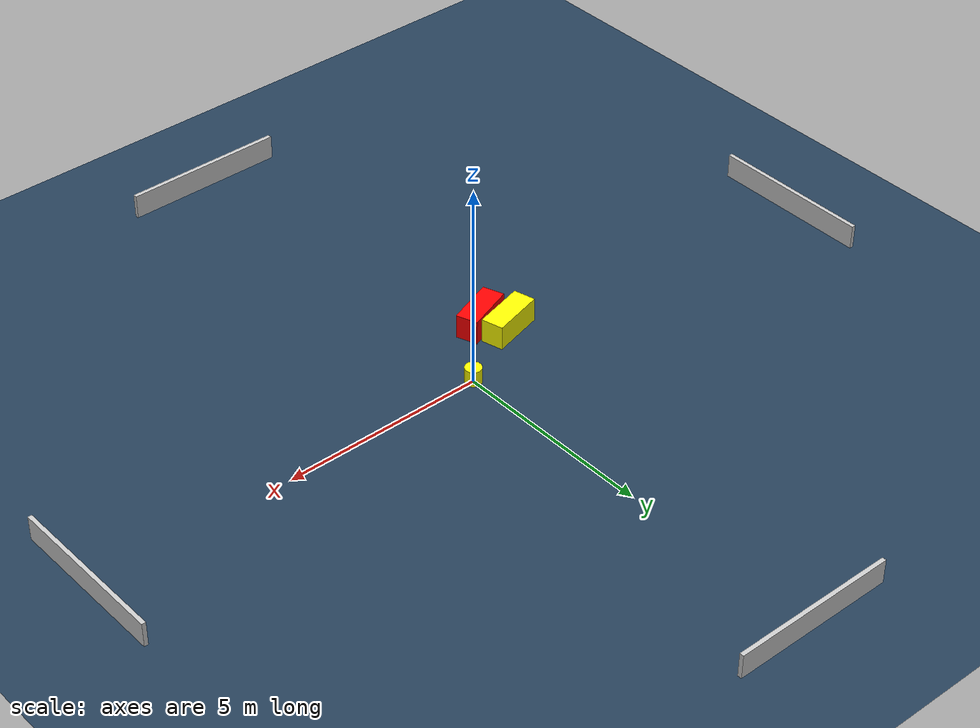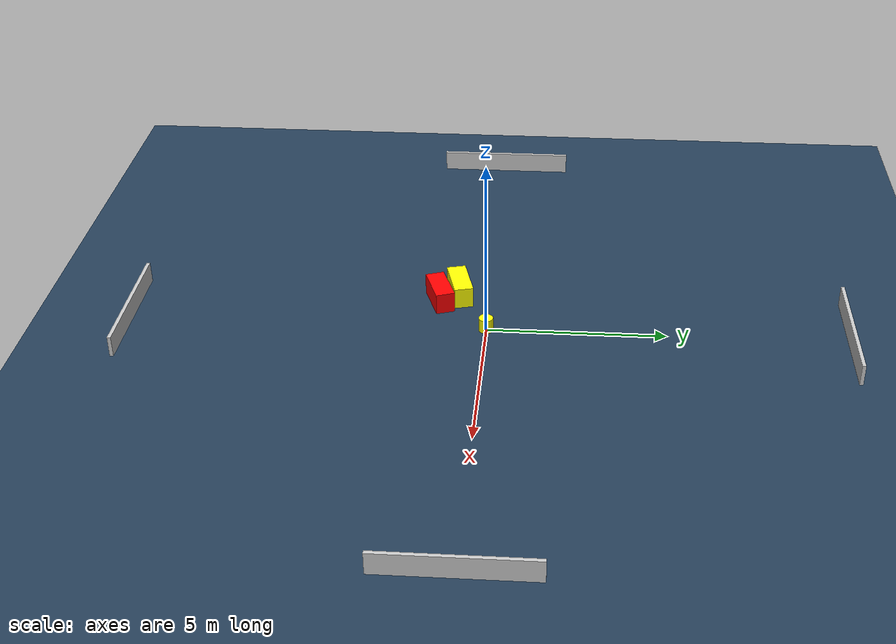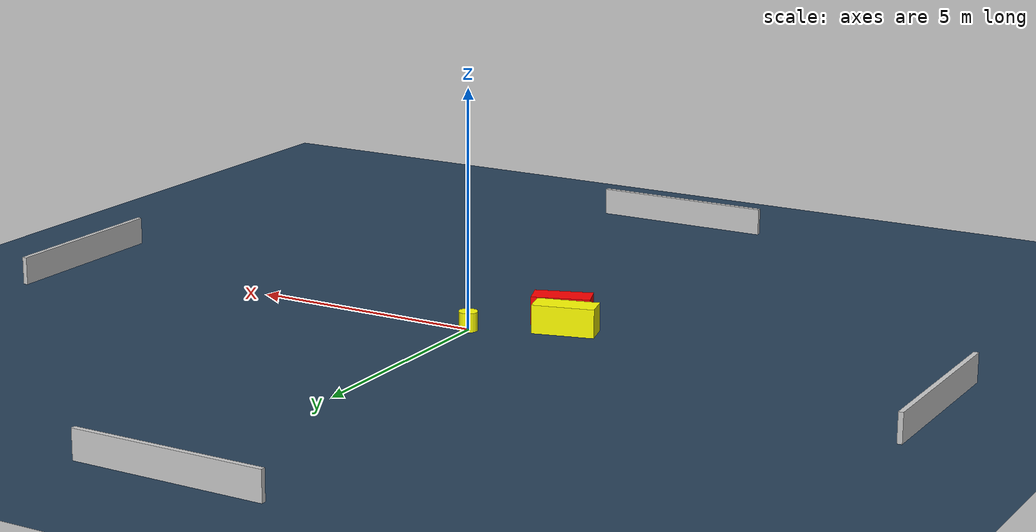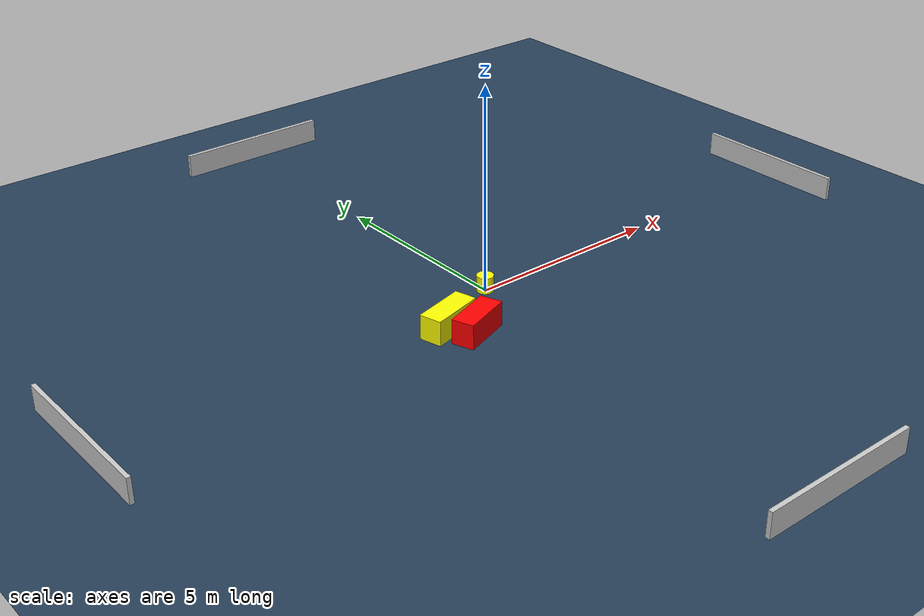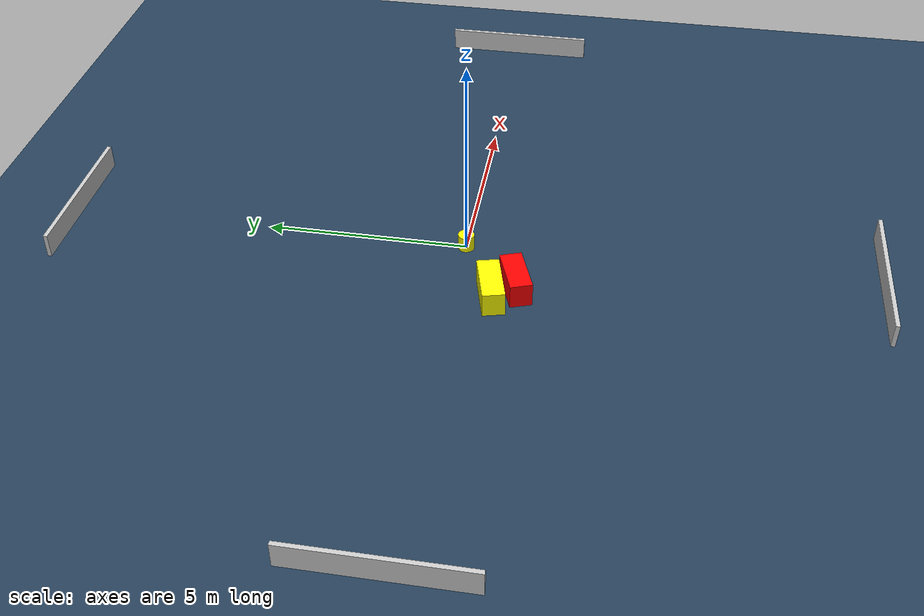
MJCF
<?xml version="1.0" ?>
<mujoco model="generated_environment">
  <option timestep="0.01" integrator="RK4" cone="elliptic"/>
  <default>
    <geom density="1"/>
  </default>
  <asset>
    <texture builtin="gradient" height="3072" name="skybox" rgb1="0.3 0.5 0.7" rgb2="0 0 0" type="skybox" width="512"/>
    <texture builtin="checker" height="300" name="groundplane" rgb1="0.2 0.3 0.4" rgb2="0.1 0.2 0.3" type="2d" width="300"/>
    <material name="groundplane" reflectance="0.2" texrepeat="5 5" texture="groundplane"/>
  </asset>
  <worldbody>
    <light dir="0 0 -1" directional="true" pos="0 0 1.5"/>
    <geom condim="3" friction="0.5 0.005 0.001" material="groundplane" name="floor" pos="0 0 0" size="0 0 0.05" type="plane"/>
    <body name="walls">
      <geom name="wall_1" condim="4" pos="-10.0 0.0 0.3" rgba="0.800000011920929 0.800000011920929 0.800000011920929 1.0" size="0.05 2.0 0.3" type="box"/>
      <geom name="wall_2" condim="4" pos="10.0 0.0 0.3" rgba="0.800000011920929 0.800000011920929 0.800000011920929 1.0" size="0.05 2.0 0.3" type="box"/>
      <geom name="wall_3" condim="4" pos="0.0 -10.0 0.3" rgba="0.800000011920929 0.800000011920929 0.800000011920929 1.0" size="2.0 0.05 0.3" type="box"/>
      <geom name="wall_4" condim="4" pos="0.0 10.0 0.3" rgba="0.800000011920929 0.800000011920929 0.800000011920929 1.0" size="2.0 0.05 0.3" type="box"/>
    </body>
    <body name="robot">
      <joint name="joint_x" type="slide" pos="0 0 0" axis="1 0 0"/>
      <joint name="joint_y" type="slide" pos="0 0 0" axis="0 1 0"/>
      <geom name="robot" type="cylinder" pos="0.0 0.0 0.2" size="0.2 0.2 0.0" mass="5.0" friction="1.0 0.005 0.0001" condim="4" rgba="1.0 1.0 0.0 1.0"/>
    </body>
    <body name="obstacle_1_movable">
      <geom name="obstacle_1_movable" condim="4" pos="-1.7779906789814182 -0.8668575052709251 0.3" euler="0 0 284.63363022102527" friction="0.0 0.005 0.001" rgba="1.0 1.0 0.0 1.0" size="0.27037103462341666 0.6519330083533357 0.3" type="box" mass="0.1"/>
      <joint type="free"/>
    </body>
    <body name="obstacle_2_static">
      <geom name="obstacle_2_static" condim="4" pos="-1.4111907039257747 -1.4074247053973183 0.3" euler="0 0 289.7218411523488" friction="0.0 0.005 0.001" rgba="1.0 0.0 0.0 1.0" size="0.26868989613490984 0.613056743313633 0.3" type="box"/>
    </body>
  </worldbody>
  <actuator>
    <motor name="actuator_x" joint="joint_x" gear="1" ctrlrange="-1 1"/>
    <motor name="actuator_y" joint="joint_y" gear="1" ctrlrange="-1 1"/>
  </actuator>
</mujoco>
